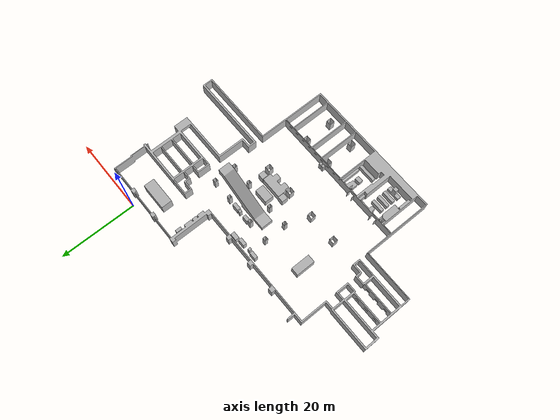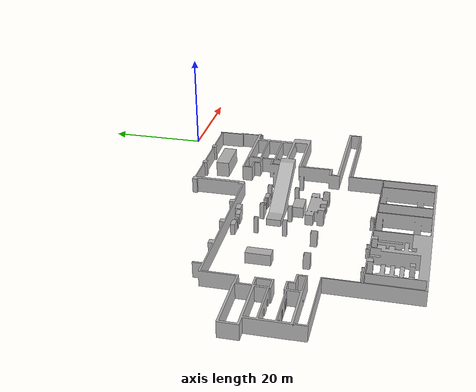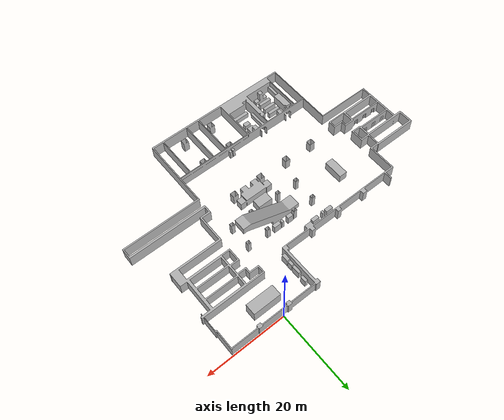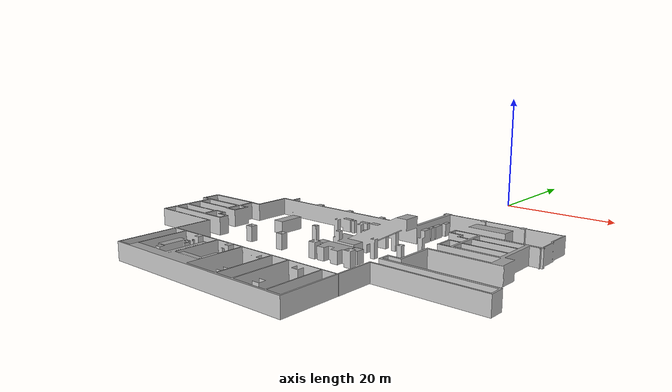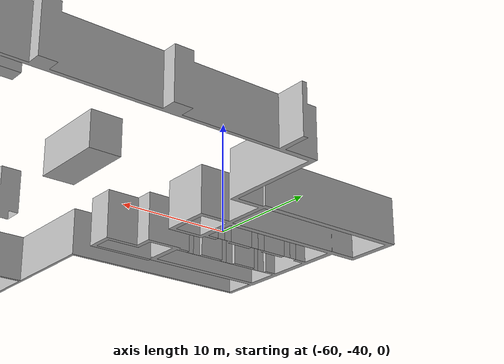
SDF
<?xml version='1.0'?>
<sdf version='1.6'>
<model name='seocho_B1_base'>
  <static>1</static>
  <allow_auto_disable>1</allow_auto_disable>
  <link name='B1_body_link'>
    <collision name='collision'>
      <geometry>
        <mesh>
          <scale>0.1 0.1 0.1</scale>
          <uri>model://seocho_B1_base/meshes/B1_collision.obj</uri>
        </mesh>
      </geometry>
    </collision>
      <collision name='floor_collision'>
        <geometry>
          <mesh>
            <scale>0.1 0.1 0.1</scale>
            <uri>model://seocho_B1_base/meshes/B1_bottom_col.obj</uri>
          </mesh>
        </geometry>
        <surface>
          <friction>
            <ode>
              <mu>1</mu>
              <mu2>1</mu2>
              <fdir1>0 0 1</fdir1>
              <slip1>0.0</slip1>
              <slip2>0.0</slip2>
            </ode>
          </friction>
        </surface>
      </collision>
    <visual name='visual'>
      <geometry>
        <mesh>
          <scale>0.1 0.1 0.1</scale>
          <uri>model://seocho_B1_base/meshes/B1_base.obj</uri>
        </mesh>
      </geometry>
      <material>
        <emissive>0.005 0.005 0.005 1</emissive>
      </material>
      <cast_shadows>0</cast_shadows>
    </visual>
  </link>
  <link name='seocho25_glass_link'>
    <visual name='visual'>
      <geometry>
        <mesh>
          <scale>0.1 0.1 0.1</scale>
          <uri>model://seocho_B1_base/meshes/B1_glass.obj</uri>
        </mesh>
      </geometry>
      <material>
        <diffuse>0 0.4 0 0.3</diffuse>
      </material>
      <cast_shadows>0</cast_shadows>
    </visual>
  </link>

  <include>
    <name>EV_1_outside_door</name>
    <pose>-50.3762 -27.43527 -6.61125 0 0 0</pose>
    <uri>model://seocho_EV_out_doors</uri>
  </include>

  <include>
    <name>EV_2_outside_door</name>
    <pose>-53.3583 -27.43527 -6.61125 0 0 0</pose>
    <uri>model://seocho_EV_out_doors</uri>
  </include>

  <include>
    <name>EV_3_outside_door</name>
    <pose>-56.34427 -27.43527 -6.61125 0 0 0</pose>
    <uri>model://seocho_EV_out_doors</uri>
  </include>

  <include>
    <name>EV_4_outside_door</name>
    <pose>-50.377726 -31.04938 -6.61125 0 0 -3.140000</pose>
    <uri>model://seocho_EV_out_doors</uri>
  </include>

  <include>
    <name>EV_5_outside_door</name>
    <pose>-53.35871 -31.04938 -6.61125 0 0 -3.140000</pose>
    <uri>model://seocho_EV_out_doors</uri>
  </include>

  <include>
    <name>EV_6_outside_door</name>
    <pose>-56.34862 -31.04938 -6.61125 0 0 -3.140000</pose>
    <uri>model://seocho_EV_out_doors</uri>
  </include>

</model>
</sdf>

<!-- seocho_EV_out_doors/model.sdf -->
<sdf version='1.6'>
<model name='seocho_EV_out_doors'>
  <static>1</static>
  <allow_auto_disable>1</allow_auto_disable>
  <link name='seocho_EV_out_doors_L_link'>
    <collision name='collision'>
      <geometry>
        <mesh>
          <scale>0.1 0.1 0.1</scale>
          <uri>model://seocho_EV_out_doors/meshes/B1_EV_door_L_out_col.obj</uri>
        </mesh>
      </geometry>
    </collision>
    <visual name='visual'>
      <geometry>
        <mesh>
          <scale>0.1 0.1 0.1</scale>
          <uri>model://seocho_EV_out_doors/meshes/B1_EV_door_L_out.obj</uri>
        </mesh>
      </geometry>
      <material>
        <emissive>0.02 0.02 0.02 1</emissive>
      </material>
    </visual>
  </link>
  <link name='seocho_EV_out_doors_R_link'>
    <collision name='collision'>
      <geometry>
        <mesh>
          <scale>0.1 0.1 0.1</scale>
          <uri>model://seocho_EV_out_doors/meshes/B1_EV_door_R_out_col.obj</uri>
        </mesh>
      </geometry>
    </collision>
    <visual name='visual'>
      <geometry>
        <mesh>
          <scale>0.1 0.1 0.1</scale>
          <uri>model://seocho_EV_out_doors/meshes/B1_EV_door_R_out.obj</uri>
        </mesh>
      </geometry>
      <material>
        <emissive>0.02 0.02 0.02 1</emissive>
      </material>
    </visual>
  </link>
</model>
</sdf>
